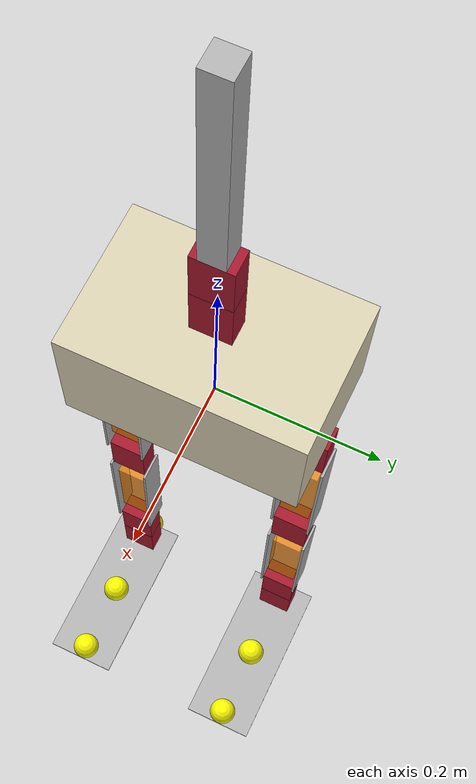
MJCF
<mujoco model="yuuki_robot_biped_isaac">

  <default>
    <site size="0.02" rgba="1 1 0 1"/>
    <joint damping="1.5" armature="0.02"/>
    <geom friction="1.15 0.005 0.0001"/>
  </default>

  <visual>
    <global offwidth="1280" offheight="960"/>
  </visual>

  <asset>
    <material name="basket" rgba="0.85 0.82 0.7 1"/>
    <material name="servo" rgba="0.65 0.1 0.18 1"/>
    <material name="metal" rgba="0.7 0.7 0.7 1"/>
    <material name="lipo" rgba="0.95 0.55 0.1 0.85"/>
  </asset>

  <worldbody>
    <!-- ルート原点 = カゴ底面中央。高さは Isaac Lab init_state.pos.z で指定 -->
    <body name="basket_thigh" pos="0 0 0">
      <freejoint name="root"/>
      <site name="imu_site" pos="0 0 0.05"/>

      <geom name="basket" type="box" pos="0 0 0.0725" size="0.09 0.14 0.0725" material="basket" mass="0.5"/>

      <body name="basket_top_roll" pos="0 0 0.145">
        <joint name="basket_top_roll" type="hinge" axis="1 0 0" range="-45 45" damping="2"/>
        <inertial pos="0 0 0.0325" mass="0.18" diaginertia="0.00012 0.00012 0.00012"/>
        <geom name="basket_top_roll_servo" type="box" pos="0 0 0.0325" size="0.015 0.024 0.0325" material="servo" mass="0" contype="0" conaffinity="0"/>

        <body name="balance_pitch" pos="0 0 0.065">
          <joint name="balance_pitch" type="hinge" axis="0 1 0" range="-45 45" damping="2"/>
          <inertial pos="0 0 0.0325" mass="0.18" diaginertia="0.00012 0.00012 0.00012"/>
          <geom name="balance_pitch_servo" type="box" pos="0 0 0.0325" size="0.015 0.024 0.0325" material="servo" mass="0" contype="0" conaffinity="0"/>

          <body name="balance_bar" pos="0 0 0.065">
            <geom name="balance_bar" type="box" pos="0 0 0.125" size="0.015 0.015 0.125" material="metal" mass="1.5"/>
          </body>
        </body>
      </body>

      <body name="left_hip" pos="0 0.12 0">
        <joint name="left_hip_roll" type="hinge" axis="1 0 0" range="-30 90" damping="2"/>
        <inertial pos="0 0 -0.0325" mass="0.18" diaginertia="0.00012 0.00012 0.00012"/>
        <geom name="left_hip_roll_servo" type="box" pos="0 0 -0.0325" size="0.015 0.024 0.0325" material="servo" mass="0" contype="0" conaffinity="0"/>

        <body name="left_thigh" pos="0 0 -0.065">
          <joint name="left_hip_pitch" type="hinge" axis="0 1 0" range="-110 30" damping="2"/>
          <geom name="left_thigh_plate_outer" type="box" pos="0 0.0255 -0.10" size="0.02 0.0015 0.10" material="metal" mass="0.063"/>
          <geom name="thigh_link" type="box" pos="0 -0.0255 -0.10" size="0.02 0.0015 0.10" material="metal" mass="0.063"/>
          <geom name="left_thigh_lipo" type="box" pos="0 0 -0.10" size="0.012 0.02 0.065" material="lipo" mass="0.302" contype="0" conaffinity="0"/>

          <body name="left_knee" pos="0 0 -0.20">
            <joint name="left_knee_pitch" type="hinge" axis="0 1 0" range="0 100" damping="2"/>
            <inertial pos="0 0 -0.0325" mass="0.18" diaginertia="0.00012 0.00012 0.00012"/>
            <geom name="left_knee_servo" type="box" pos="0 0 -0.0325" size="0.015 0.024 0.0325" material="servo" mass="0" contype="0" conaffinity="0"/>

            <body name="left_shin" pos="0 0 -0.065">
              <geom name="left_shin_plate_outer" type="box" pos="0 0.0255 -0.10" size="0.02 0.0015 0.10" material="metal" mass="0.063"/>
              <geom name="shank_link" type="box" pos="0 -0.0255 -0.10" size="0.02 0.0015 0.10" material="metal" mass="0.063"/>
              <geom name="left_shin_lipo" type="box" pos="0 0 -0.10" size="0.012 0.02 0.065" material="lipo" mass="0.302" contype="0" conaffinity="0"/>

              <body name="left_ankle_pitch" pos="0 0 -0.20">
                <joint name="left_ankle_pitch" type="hinge" axis="0 1 0" range="-20 90" damping="2"/>
                <inertial pos="0 0 -0.0325" mass="0.18" diaginertia="0.00012 0.00012 0.00012"/>
                <geom name="left_ankle_pitch_servo" type="box" pos="0 0 -0.0325" size="0.015 0.024 0.0325" material="servo" mass="0" contype="0" conaffinity="0"/>

                <body name="left_ankle_roll" pos="0 0 -0.065">
                  <joint name="left_ankle_roll" type="hinge" axis="1 0 0" range="-20 20" damping="2"/>
                  <inertial pos="0 0 -0.0325" mass="0.18" diaginertia="0.00012 0.00012 0.00012"/>
                  <geom name="left_ankle_roll_servo" type="box" pos="0 0 -0.0325" size="0.015 0.024 0.0325" material="servo" mass="0" contype="0" conaffinity="0"/>

                  <body name="left_sole" pos="0 0 -0.065">
                    <site name="foot_site" pos="0.10 0 0.001"/>
                    <site name="heel_bottom_site" pos="-0.025 0 0"/>
                    <site name="toe_bottom_site" pos="0.205 0 0"/>
                    <geom name="foot_plate" type="box" pos="0.10 0 0.001" size="0.125 0.05 0.001" material="metal" mass="0.226"/>
                  </body>
                </body>
              </body>
            </body>
          </body>
        </body>
      </body>

      <body name="right_hip" pos="0 -0.12 0">
        <joint name="right_hip_roll" type="hinge" axis="1 0 0" range="-30 90" damping="2"/>
        <inertial pos="0 0 -0.0325" mass="0.18" diaginertia="0.00012 0.00012 0.00012"/>
        <geom name="right_hip_roll_servo" type="box" pos="0 0 -0.0325" size="0.015 0.024 0.0325" material="servo" mass="0" contype="0" conaffinity="0"/>

        <body name="right_thigh" pos="0 0 -0.065">
          <joint name="right_hip_pitch" type="hinge" axis="0 1 0" range="-110 30" damping="2"/>
          <geom name="right_thigh_plate_outer" type="box" pos="0 -0.0255 -0.10" size="0.02 0.0015 0.10" material="metal" mass="0.063"/>
          <geom name="right_thigh_link" type="box" pos="0 0.0255 -0.10" size="0.02 0.0015 0.10" material="metal" mass="0.063"/>
          <geom name="right_thigh_lipo" type="box" pos="0 0 -0.10" size="0.012 0.02 0.065" material="lipo" mass="0.302" contype="0" conaffinity="0"/>

          <body name="right_knee" pos="0 0 -0.20">
            <joint name="right_knee_pitch" type="hinge" axis="0 1 0" range="0 100" damping="2"/>
            <inertial pos="0 0 -0.0325" mass="0.18" diaginertia="0.00012 0.00012 0.00012"/>
            <geom name="right_knee_servo" type="box" pos="0 0 -0.0325" size="0.015 0.024 0.0325" material="servo" mass="0" contype="0" conaffinity="0"/>

            <body name="right_shin" pos="0 0 -0.065">
              <geom name="right_shin_plate_outer" type="box" pos="0 -0.0255 -0.10" size="0.02 0.0015 0.10" material="metal" mass="0.063"/>
              <geom name="right_shin_link" type="box" pos="0 0.0255 -0.10" size="0.02 0.0015 0.10" material="metal" mass="0.063"/>
              <geom name="right_shin_lipo" type="box" pos="0 0 -0.10" size="0.012 0.02 0.065" material="lipo" mass="0.302" contype="0" conaffinity="0"/>

              <body name="right_ankle_pitch" pos="0 0 -0.20">
                <joint name="right_ankle_pitch" type="hinge" axis="0 1 0" range="-20 90" damping="2"/>
                <inertial pos="0 0 -0.0325" mass="0.18" diaginertia="0.00012 0.00012 0.00012"/>
                <geom name="right_ankle_pitch_servo" type="box" pos="0 0 -0.0325" size="0.015 0.024 0.0325" material="servo" mass="0" contype="0" conaffinity="0"/>

                <body name="right_ankle_roll" pos="0 0 -0.065">
                  <joint name="right_ankle_roll" type="hinge" axis="1 0 0" range="-20 20" damping="2"/>
                  <inertial pos="0 0 -0.0325" mass="0.18" diaginertia="0.00012 0.00012 0.00012"/>
                  <geom name="right_ankle_roll_servo" type="box" pos="0 0 -0.0325" size="0.015 0.024 0.0325" material="servo" mass="0" contype="0" conaffinity="0"/>

                  <body name="right_sole" pos="0 0 -0.065">
                    <site name="right_foot_site" pos="0.10 0 0.001"/>
                    <site name="right_heel_bottom_site" pos="-0.025 0 0"/>
                    <site name="right_toe_bottom_site" pos="0.205 0 0"/>
                    <geom name="right_foot_plate" type="box" pos="0.10 0 0.001" size="0.125 0.05 0.001" material="metal" mass="0.226"/>
                  </body>
                </body>
              </body>
            </body>
          </body>
        </body>
      </body>
    </body>
  </worldbody>

  <actuator>
    <position name="left_hip_roll_motor" joint="left_hip_roll" kp="85" kv="12" ctrlrange="-0.524 1.571" forcelimited="true" forcerange="-14.7 14.7"/>
    <position name="left_hip_pitch_motor" joint="left_hip_pitch" kp="85" kv="12" ctrlrange="-1.919 0.524" forcelimited="true" forcerange="-14.7 14.7"/>
    <position name="left_knee_pitch_motor" joint="left_knee_pitch" kp="120" kv="14" ctrlrange="0 1.745" forcelimited="true" forcerange="-14.7 14.7"/>
    <position name="left_ankle_pitch_motor" joint="left_ankle_pitch" kp="70" kv="10" ctrlrange="-0.349 1.571" forcelimited="true" forcerange="-14.7 14.7"/>
    <position name="left_ankle_roll_motor" joint="left_ankle_roll" kp="50" kv="8" ctrlrange="-0.349 0.349" forcelimited="true" forcerange="-14.7 14.7"/>

    <position name="right_hip_roll_motor" joint="right_hip_roll" kp="85" kv="12" ctrlrange="-0.524 1.571" forcelimited="true" forcerange="-14.7 14.7"/>
    <position name="right_hip_pitch_motor" joint="right_hip_pitch" kp="85" kv="12" ctrlrange="-1.919 0.524" forcelimited="true" forcerange="-14.7 14.7"/>
    <position name="right_knee_pitch_motor" joint="right_knee_pitch" kp="120" kv="14" ctrlrange="0 1.745" forcelimited="true" forcerange="-14.7 14.7"/>
    <position name="right_ankle_pitch_motor" joint="right_ankle_pitch" kp="70" kv="10" ctrlrange="-0.349 1.571" forcelimited="true" forcerange="-14.7 14.7"/>
    <position name="right_ankle_roll_motor" joint="right_ankle_roll" kp="50" kv="8" ctrlrange="-0.349 0.349" forcelimited="true" forcerange="-14.7 14.7"/>

    <position name="basket_top_roll_motor" joint="basket_top_roll" kp="85" kv="12" ctrlrange="-0.785 0.785" forcelimited="true" forcerange="-14.7 14.7"/>
    <position name="balance_pitch_motor" joint="balance_pitch" kp="85" kv="12" ctrlrange="-0.785 0.785" forcelimited="true" forcerange="-14.7 14.7"/>
  </actuator>

  <sensor>
    <gyro name="imu_gyro" site="imu_site"/>
    <framezaxis name="imu_zaxis" objtype="site" objname="imu_site"/>
    <framexaxis name="foot_xaxis" objtype="site" objname="foot_site"/>
    <framezaxis name="foot_zaxis" objtype="site" objname="foot_site"/>
    <framepos name="toe_pos" objtype="site" objname="toe_bottom_site"/>
  </sensor>
</mujoco>
